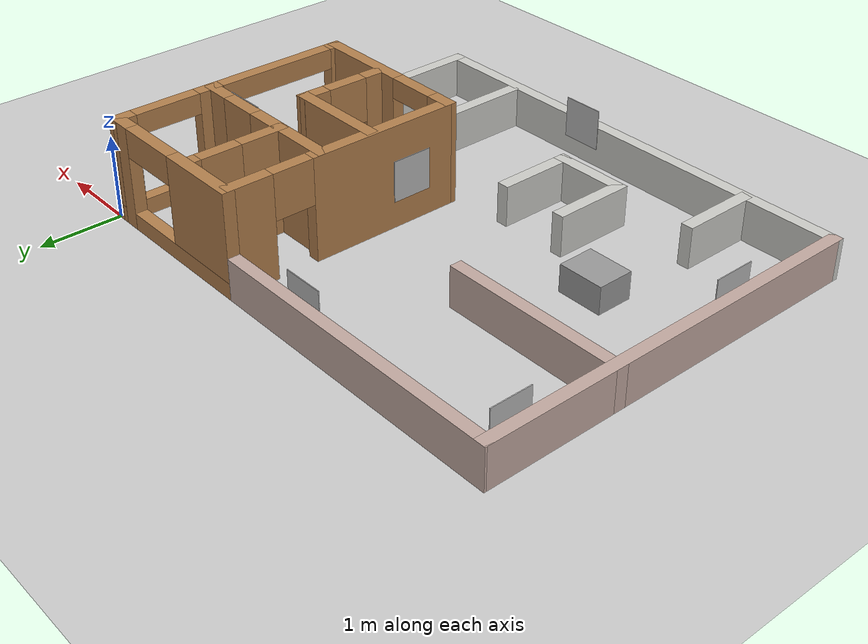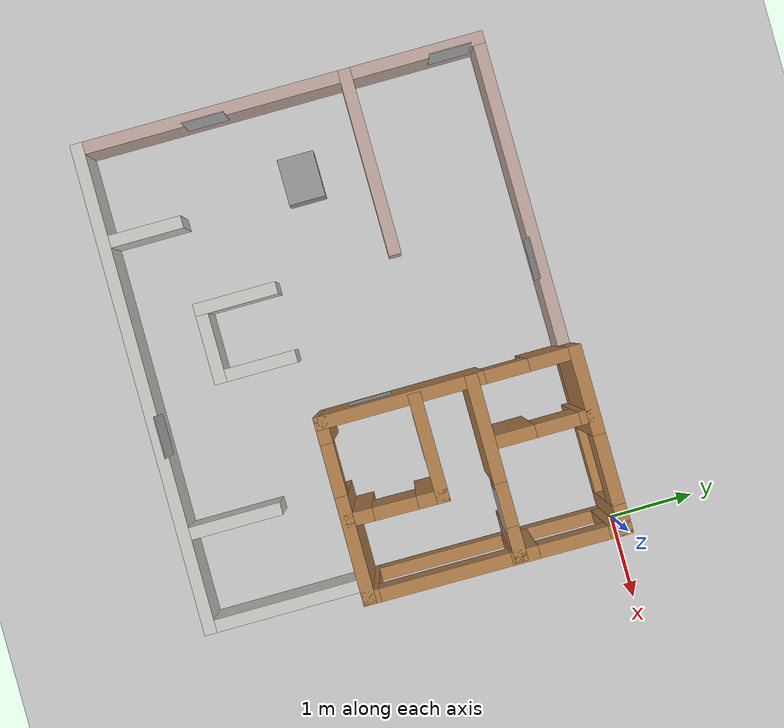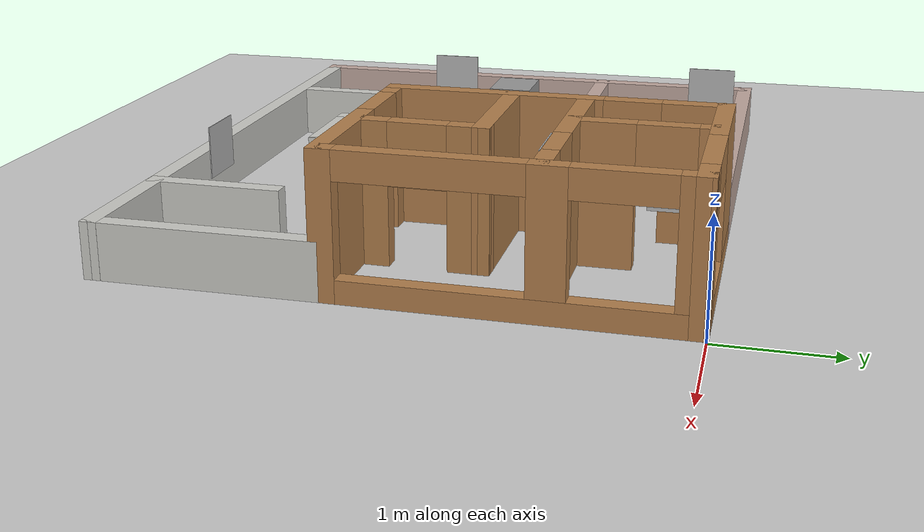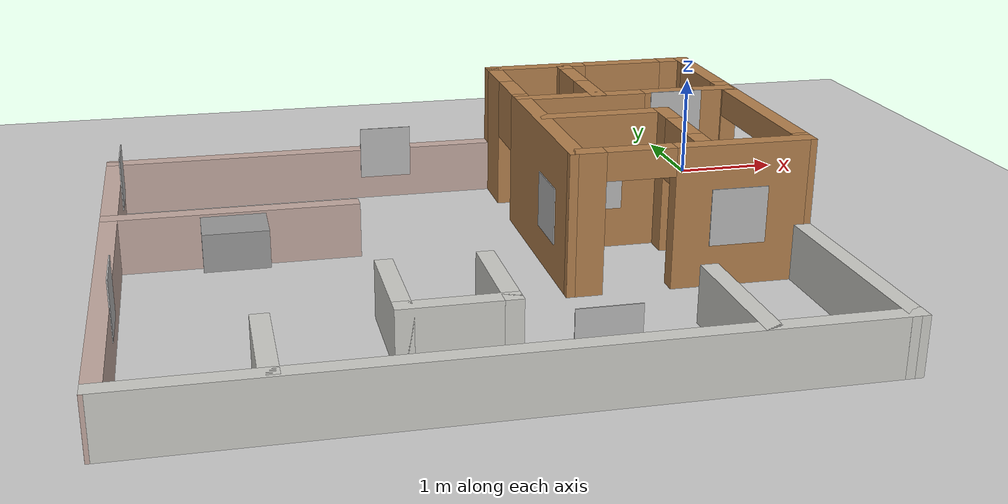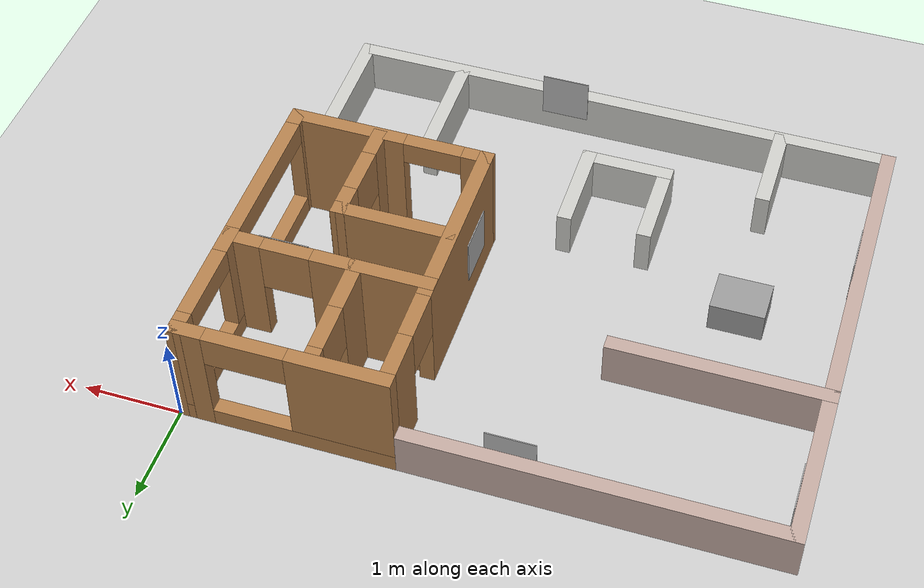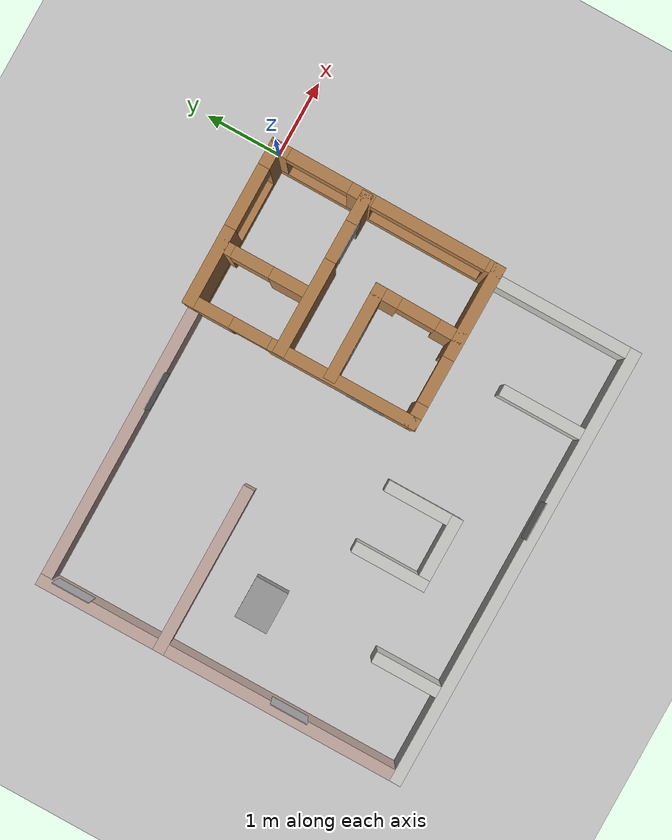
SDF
<sdf version="1.6">
 <world name="default">
  <model name="ground_plane">
   <static>1</static>
   <link name="link">
    <collision name="collision">
     <geometry><plane><normal>0 0 1</normal><size>100 100</size></plane></geometry>
     <surface><friction><ode><mu>100</mu><mu2>50</mu2></ode></friction></surface>
    </collision>
    <visual name="visual">
     <cast_shadows>0</cast_shadows>
     <geometry><plane><normal>0 0 1</normal><size>100 100</size></plane></geometry>
     <material>
      <script><uri>file://media/materials/scripts/gazebo.material</uri><name>Gazebo/Grey</name></script>
     </material>
    </visual>
   </link>
  </model>
  <model name="Muzeum">
   <pose>-3 -2.5 0 0 -0 0</pose>
   <link name="Wall_0">
    <collision name="Wall_0_Collision">
     <geometry><box><size>5.9351 0.15 0.5</size></box></geometry>
     <pose>0 0 0.25 0 -0 0</pose>
    </collision>
    <visual name="Wall_0_Visual">
     <pose>0 0 0.25 0 -0 0</pose>
     <geometry><box><size>5.9351 0.15 0.5</size></box></geometry>
     <material>
      <script><uri>file://media/materials/scripts/gazebo.material</uri><name>Gazebo/CeilingTiled</name></script>
      <ambient>0.760784 0.662745 0.627451 1</ambient>
     </material>
    </visual>
    <pose>-0.007007 -2.42791 0 0 0 -0.003148</pose>
   </link>
   <link name="Wall_10">
    <collision name="Wall_10_Collision">
     <geometry><box><size>2.25 0.15 0.5</size></box></geometry>
     <pose>0 0 0.25 0 -0 0</pose>
    </collision>
    <visual name="Wall_10_Visual">
     <pose>0 0 0.25 0 -0 0</pose>
     <geometry><box><size>2.25 0.15 0.5</size></box></geometry>
     <material>
      <script><uri>file://media/materials/scripts/gazebo.material</uri><name>Gazebo/Grey</name></script>
      <ambient>0.760784 0.662745 0.627451 1</ambient>
     </material>
    </visual>
    <pose>-1.84954 0.824193 0 0 -0 0</pose>
   </link>
   <link name="Wall_12">
    <collision name="Wall_12_Collision">
     <geometry><box><size>1 0.15 0.5</size></box></geometry>
     <pose>0 0 0.25 0 -0 0</pose>
    </collision>
    <visual name="Wall_12_Visual">
     <pose>0 0 0.25 0 -0 0</pose>
     <geometry><box><size>1 0.15 0.5</size></box></geometry>
     <material>
      <script><uri>file://media/materials/scripts/gazebo.material</uri><name>Gazebo/CeilingTiled</name></script>
      <ambient>0.760784 0.662745 0.627451 1</ambient>
     </material>
    </visual>
    <pose>-0.729544 -1.11281 0 0 0 -1.5708</pose>
   </link>
   <link name="Wall_13">
    <collision name="Wall_13_Collision">
     <geometry><box><size>0.979959 0.15 0.5</size></box></geometry>
     <pose>0 0 0.25 0 -0 0</pose>
    </collision>
    <visual name="Wall_13_Visual">
     <pose>0 0 0.25 0 -0 0</pose>
     <geometry><box><size>0.979959 0.15 0.5</size></box></geometry>
     <material>
      <script><uri>file://media/materials/scripts/gazebo.material</uri><name>Gazebo/CeilingTiled</name></script>
      <ambient>0.760784 0.662745 0.627451 1</ambient>
     </material>
    </visual>
    <pose>-0.314544 -1.53781 0 0 -0 0</pose>
   </link>
   <link name="Wall_14">
    <collision name="Wall_14_Collision">
     <geometry><box><size>1.00821 0.15 0.5</size></box></geometry>
     <pose>0 0 0.25 0 -0 0</pose>
    </collision>
    <visual name="Wall_14_Visual">
     <pose>0 0 0.25 0 -0 0</pose>
     <geometry><box><size>1.00821 0.15 0.5</size></box></geometry>
     <material>
      <script><uri>file://media/materials/scripts/gazebo.material</uri><name>Gazebo/CeilingTiled</name></script>
      <ambient>0.760784 0.662745 0.627451 1</ambient>
     </material>
    </visual>
    <pose>0.100456 -1.10881 0 0 -0 1.5708</pose>
   </link>
   <link name="Wall_16">
    <collision name="Wall_16_Collision">
     <geometry><box><size>1.25027 0.15 1.25</size></box></geometry>
     <pose>0 0 0.625 0 -0 0</pose>
    </collision>
    <visual name="Wall_16_Visual">
     <pose>0 0 0.625 0 -0 0</pose>
     <geometry><box><size>1.25027 0.15 1.25</size></box></geometry>
     <material>
      <script><uri>file://media/materials/scripts/gazebo.material</uri><name>Gazebo/Wood</name></script>
      <ambient>1 1 1 1</ambient>
     </material>
    </visual>
    <pose>1.46896 0.594193 0 0 -0 0</pose>
   </link>
   <link name="Wall_17">
    <pose>2.01146 0.070193 0 0 0 -1.58606</pose>
    <visual name="Wall_17_Visual_0">
     <pose>-0.420759 0 0.625 0 -0 0</pose>
     <geometry><box><size>0.357124 0.15 1.25</size></box></geometry>
     <material>
      <script><uri>file://media/materials/scripts/gazebo.material</uri><name>Gazebo/Wood</name></script>
      <ambient>1 1 1 1</ambient>
     </material>
    </visual>
    <collision name="Wall_17_Collision_0">
     <geometry><box><size>0.357124 0.15 1.25</size></box></geometry>
     <pose>-0.420759 0 0.625 0 -0 0</pose>
    </collision>
    <visual name="Wall_17_Visual_1">
     <pose>0.428562 0 0.625 0 -0 0</pose>
     <geometry><box><size>0.341518 0.15 1.25</size></box></geometry>
     <material>
      <script><uri>file://media/materials/scripts/gazebo.material</uri><name>Gazebo/Wood</name></script>
      <ambient>1 1 1 1</ambient>
     </material>
    </visual>
    <collision name="Wall_17_Collision_1">
     <geometry><box><size>0.341518 0.15 1.25</size></box></geometry>
     <pose>0.428562 0 0.625 0 -0 0</pose>
    </collision>
    <visual name="Wall_17_Visual_2">
     <pose>0.007803 0 0.975 0 -0 0</pose>
     <geometry><box><size>0.5 0.15 0.55</size></box></geometry>
     <material>
      <script><uri>file://media/materials/scripts/gazebo.material</uri><name>Gazebo/Wood</name></script>
      <ambient>1 1 1 1</ambient>
     </material>
    </visual>
    <collision name="Wall_17_Collision_2">
     <geometry><box><size>0.5 0.15 0.55</size></box></geometry>
     <pose>0.007803 0 0.975 0 -0 0</pose>
    </collision>
   </link>
   <link name="Wall_19">
    <pose>1.88387 1.24696 0 0 0 -0.003258</pose>
    <visual name="Wall_19_Visual_0">
     <pose>-0.448853 0 0.625 0 -0 0</pose>
     <geometry><box><size>1.23514 0.15 1.25</size></box></geometry>
     <material>
      <script><uri>file://media/materials/scripts/gazebo.material</uri><name>Gazebo/Wood</name></script>
      <ambient>1 1 1 1</ambient>
     </material>
    </visual>
    <collision name="Wall_19_Collision_0">
     <geometry><box><size>1.23514 0.15 1.25</size></box></geometry>
     <pose>-0.448853 0 0.625 0 -0 0</pose>
    </collision>
    <visual name="Wall_19_Visual_1">
     <pose>0.867571 0 0.625 0 -0 0</pose>
     <geometry><box><size>0.397706 0.15 1.25</size></box></geometry>
     <material>
      <script><uri>file://media/materials/scripts/gazebo.material</uri><name>Gazebo/Wood</name></script>
      <ambient>1 1 1 1</ambient>
     </material>
    </visual>
    <collision name="Wall_19_Collision_1">
     <geometry><box><size>0.397706 0.15 1.25</size></box></geometry>
     <pose>0.867571 0 0.625 0 -0 0</pose>
    </collision>
    <visual name="Wall_19_Visual_2">
     <pose>0.418718 0 0.975 0 -0 0</pose>
     <geometry><box><size>0.5 0.15 0.55</size></box></geometry>
     <material>
      <script><uri>file://media/materials/scripts/gazebo.material</uri><name>Gazebo/Wood</name></script>
      <ambient>1 1 1 1</ambient>
     </material>
    </visual>
    <collision name="Wall_19_Collision_2">
     <geometry><box><size>0.5 0.15 0.55</size></box></geometry>
     <pose>0.418718 0 0.975 0 -0 0</pose>
    </collision>
   </link>
   <link name="Wall_21">
    <pose>1.60746 1.80819 0 0 -0 1.5708</pose>
    <visual name="Wall_21_Visual_0">
     <pose>-0.328111 0 0.625 0 -0 0</pose>
     <geometry><box><size>0.593779 0.15 1.25</size></box></geometry>
     <material>
      <script><uri>file://media/materials/scripts/gazebo.material</uri><name>Gazebo/Wood</name></script>
      <ambient>1 1 1 1</ambient>
     </material>
    </visual>
    <collision name="Wall_21_Collision_0">
     <geometry><box><size>0.593779 0.15 1.25</size></box></geometry>
     <pose>-0.328111 0 0.625 0 -0 0</pose>
    </collision>
    <visual name="Wall_21_Visual_1">
     <pose>0.546889 0 0.625 0 -0 0</pose>
     <geometry><box><size>0.156221 0.15 1.25</size></box></geometry>
     <material>
      <script><uri>file://media/materials/scripts/gazebo.material</uri><name>Gazebo/Wood</name></script>
      <ambient>1 1 1 1</ambient>
     </material>
    </visual>
    <collision name="Wall_21_Collision_1">
     <geometry><box><size>0.156221 0.15 1.25</size></box></geometry>
     <pose>0.546889 0 0.625 0 -0 0</pose>
    </collision>
    <visual name="Wall_21_Visual_2">
     <pose>0.218779 0 0.975 0 -0 0</pose>
     <geometry><box><size>0.5 0.15 0.55</size></box></geometry>
     <material>
      <script><uri>file://media/materials/scripts/gazebo.material</uri><name>Gazebo/Wood</name></script>
      <ambient>1 1 1 1</ambient>
     </material>
    </visual>
    <collision name="Wall_21_Collision_2">
     <geometry><box><size>0.5 0.15 0.55</size></box></geometry>
     <pose>0.218779 0 0.975 0 -0 0</pose>
    </collision>
   </link>
   <link name="Wall_23">
    <collision name="Wall_23_Collision">
     <geometry><box><size>1.25 0.15 0.5</size></box></geometry>
     <pose>0 0 0.25 0 -0 0</pose>
    </collision>
    <visual name="Wall_23_Visual">
     <pose>0 0 0.25 0 -0 0</pose>
     <geometry><box><size>1.25 0.15 0.5</size></box></geometry>
     <material>
      <script><uri>file://media/materials/scripts/gazebo.material</uri><name>Gazebo/CeilingTiled</name></script>
      <ambient>0.760784 0.662745 0.627451 1</ambient>
     </material>
    </visual>
    <pose>1.76746 -1.87681 0 0 -0 1.5708</pose>
   </link>
   <link name="Wall_26">
    <collision name="Wall_26_Collision">
     <geometry><box><size>1 0.15 0.5</size></box></geometry>
     <pose>0 0 0.25 0 -0 0</pose>
    </collision>
    <visual name="Wall_26_Visual">
     <pose>0 0 0.25 0 -0 0</pose>
     <geometry><box><size>1 0.15 0.5</size></box></geometry>
     <material>
      <script><uri>file://media/materials/scripts/gazebo.material</uri><name>Gazebo/CeilingTiled</name></script>
      <ambient>0.760784 0.662745 0.627451 1</ambient>
     </material>
    </visual>
    <pose>-1.76654 -1.96681 0 0 -0 1.5708</pose>
   </link>
   <link name="Wall_28">
    <pose>2.89167 0.974494 0 0 -0 1.56552</pose>
    <visual name="Wall_28_Visual_0">
     <pose>-1.43397 0 0.625 0 -0 0</pose>
     <geometry><box><size>0.206833 0.15 1.25</size></box></geometry>
     <material>
      <script><uri>file://media/materials/scripts/gazebo.material</uri><name>Gazebo/Wood</name></script>
      <ambient>1 1 1 1</ambient>
     </material>
    </visual>
    <collision name="Wall_28_Collision_0">
     <geometry><box><size>0.206833 0.15 1.25</size></box></geometry>
     <pose>-1.43397 0 0.625 0 -0 0</pose>
    </collision>
    <visual name="Wall_28_Visual_1">
     <pose>0.103416 0 0.1 0 -0 0</pose>
     <geometry><box><size>2.86795 0.15 0.2</size></box></geometry>
     <material>
      <script><uri>file://media/materials/scripts/gazebo.material</uri><name>Gazebo/Wood</name></script>
      <ambient>1 1 1 1</ambient>
     </material>
    </visual>
    <collision name="Wall_28_Collision_1">
     <geometry><box><size>2.86795 0.15 0.2</size></box></geometry>
     <pose>0.103416 0 0.1 0 -0 0</pose>
    </collision>
    <visual name="Wall_28_Visual_2">
     <pose>0.325307 0 0.725 0 -0 0</pose>
     <geometry><box><size>0.311727 0.15 1.05</size></box></geometry>
     <material>
      <script><uri>file://media/materials/scripts/gazebo.material</uri><name>Gazebo/Wood</name></script>
      <ambient>1 1 1 1</ambient>
     </material>
    </visual>
    <collision name="Wall_28_Collision_2">
     <geometry><box><size>0.311727 0.15 1.05</size></box></geometry>
     <pose>0.325307 0 0.725 0 -0 0</pose>
    </collision>
    <visual name="Wall_28_Visual_3">
     <pose>1.40928 0 0.725 0 -0 0</pose>
     <geometry><box><size>0.256218 0.15 1.05</size></box></geometry>
     <material>
      <script><uri>file://media/materials/scripts/gazebo.material</uri><name>Gazebo/Wood</name></script>
      <ambient>1 1 1 1</ambient>
     </material>
    </visual>
    <collision name="Wall_28_Collision_3">
     <geometry><box><size>0.256218 0.15 1.05</size></box></geometry>
     <pose>1.40928 0 0.725 0 -0 0</pose>
    </collision>
    <visual name="Wall_28_Visual_4">
     <pose>-0.580556 0 1.125 0 -0 0</pose>
     <geometry><box><size>1.5 0.15 0.25</size></box></geometry>
     <material>
      <script><uri>file://media/materials/scripts/gazebo.material</uri><name>Gazebo/Wood</name></script>
      <ambient>1 1 1 1</ambient>
     </material>
    </visual>
    <collision name="Wall_28_Collision_4">
     <geometry><box><size>1.5 0.15 0.25</size></box></geometry>
     <pose>-0.580556 0 1.125 0 -0 0</pose>
    </collision>
    <visual name="Wall_28_Visual_5">
     <pose>0.881171 0 1.125 0 -0 0</pose>
     <geometry><box><size>0.8 0.15 0.25</size></box></geometry>
     <material>
      <script><uri>file://media/materials/scripts/gazebo.material</uri><name>Gazebo/Wood</name></script>
      <ambient>1 1 1 1</ambient>
     </material>
    </visual>
    <collision name="Wall_28_Collision_5">
     <geometry><box><size>0.8 0.15 0.25</size></box></geometry>
     <pose>0.881171 0 1.125 0 -0 0</pose>
    </collision>
   </link>
   <link name="Wall_3">
    <collision name="Wall_3_Collision">
     <geometry><box><size>4.99773 0.15 0.5</size></box></geometry>
     <pose>0 0 0.25 0 -0 0</pose>
    </collision>
    <visual name="Wall_3_Visual">
     <pose>0 0 0.25 0 -0 0</pose>
     <geometry><box><size>4.99773 0.15 0.5</size></box></geometry>
     <material>
      <script><uri>file://media/materials/scripts/gazebo.material</uri><name>Gazebo/Grey</name></script>
      <ambient>0.760784 0.662745 0.627451 1</ambient>
     </material>
    </visual>
    <pose>-2.89954 0.005193 0 0 0 -1.5708</pose>
   </link>
   <link name="Wall_33">
    <pose>1.89342 2.43553 0 0 0 -3.14027</pose>
    <visual name="Wall_33_Visual_0">
     <pose>-0.909474 0 0.625 0 -0 0</pose>
     <geometry><box><size>0.343502 0.15 1.25</size></box></geometry>
     <material>
      <script><uri>file://media/materials/scripts/gazebo.material</uri><name>Gazebo/Wood</name></script>
      <ambient>1 1 1 1</ambient>
     </material>
    </visual>
    <collision name="Wall_33_Collision_0">
     <geometry><box><size>0.343502 0.15 1.25</size></box></geometry>
     <pose>-0.909474 0 0.625 0 -0 0</pose>
    </collision>
    <visual name="Wall_33_Visual_1">
     <pose>0.171751 0 0.1 0 -0 0</pose>
     <geometry><box><size>1.81895 0.15 0.2</size></box></geometry>
     <material>
      <script><uri>file://media/materials/scripts/gazebo.material</uri><name>Gazebo/Wood</name></script>
      <ambient>1 1 1 1</ambient>
     </material>
    </visual>
    <collision name="Wall_33_Collision_1">
     <geometry><box><size>1.81895 0.15 0.2</size></box></geometry>
     <pose>0.171751 0 0.1 0 -0 0</pose>
    </collision>
    <visual name="Wall_33_Visual_2">
     <pose>0.571751 0 0.725 0 -0 0</pose>
     <geometry><box><size>1.01895 0.15 1.05</size></box></geometry>
     <material>
      <script><uri>file://media/materials/scripts/gazebo.material</uri><name>Gazebo/Wood</name></script>
      <ambient>1 1 1 1</ambient>
     </material>
    </visual>
    <collision name="Wall_33_Collision_2">
     <geometry><box><size>1.01895 0.15 1.05</size></box></geometry>
     <pose>0.571751 0 0.725 0 -0 0</pose>
    </collision>
    <visual name="Wall_33_Visual_3">
     <pose>-0.337723 0 1.075 0 -0 0</pose>
     <geometry><box><size>0.8 0.15 0.35</size></box></geometry>
     <material>
      <script><uri>file://media/materials/scripts/gazebo.material</uri><name>Gazebo/Wood</name></script>
      <ambient>1 1 1 1</ambient>
     </material>
    </visual>
    <collision name="Wall_33_Collision_3">
     <geometry><box><size>0.8 0.15 0.35</size></box></geometry>
     <pose>-0.337723 0 1.075 0 -0 0</pose>
    </collision>
   </link>
   <link name="Wall_35">
    <collision name="Wall_35_Collision">
     <geometry><box><size>2.09915 0.15 0.5</size></box></geometry>
     <pose>0 0 0.25 0 -0 0</pose>
    </collision>
    <visual name="Wall_35_Visual">
     <pose>0 0 0.25 0 -0 0</pose>
     <geometry><box><size>2.09915 0.15 0.5</size></box></geometry>
     <material>
      <script><uri>file://media/materials/scripts/gazebo.material</uri><name>Gazebo/CeilingTiled</name></script>
      <ambient>0.760784 0.662745 0.627451 1</ambient>
     </material>
    </visual>
    <pose>2.88474 -1.46245 0 0 -0 1.57161</pose>
   </link>
   <link name="Wall_37">
    <collision name="Wall_37_Collision">
     <geometry><box><size>3.93685 0.15 0.5</size></box></geometry>
     <pose>0 0 0.25 0 -0 0</pose>
    </collision>
    <visual name="Wall_37_Visual">
     <pose>0 0 0.25 0 -0 0</pose>
     <geometry><box><size>3.93685 0.15 0.5</size></box></geometry>
     <material>
      <script><uri>file://media/materials/scripts/gazebo.material</uri><name>Gazebo/Grey</name></script>
      <ambient>0.760784 0.662745 0.627451 1</ambient>
     </material>
    </visual>
    <pose>-1.00604 2.43169 0 0 -0 0.00132</pose>
   </link>
   <link name="Wall_7">
    <pose>0.887455 0.947193 0 0 0 -1.5708</pose>
    <visual name="Wall_7_Visual_0">
     <pose>-1.2252 0 0.625 0 -0 0</pose>
     <geometry><box><size>0.549592 0.15 1.25</size></box></geometry>
     <material>
      <script><uri>file://media/materials/scripts/gazebo.material</uri><name>Gazebo/Wood</name></script>
      <ambient>1 1 1 1</ambient>
     </material>
    </visual>
    <collision name="Wall_7_Collision_0">
     <geometry><box><size>0.549592 0.15 1.25</size></box></geometry>
     <pose>-1.2252 0 0.625 0 -0 0</pose>
    </collision>
    <visual name="Wall_7_Visual_1">
     <pose>0.524796 0 0.625 0 -0 0</pose>
     <geometry><box><size>1.95041 0.15 1.25</size></box></geometry>
     <material>
      <script><uri>file://media/materials/scripts/gazebo.material</uri><name>Gazebo/Wood</name></script>
      <ambient>1 1 1 1</ambient>
     </material>
    </visual>
    <collision name="Wall_7_Collision_1">
     <geometry><box><size>1.95041 0.15 1.25</size></box></geometry>
     <pose>0.524796 0 0.625 0 -0 0</pose>
    </collision>
    <visual name="Wall_7_Visual_2">
     <pose>-0.700408 0 0.975 0 -0 0</pose>
     <geometry><box><size>0.5 0.15 0.55</size></box></geometry>
     <material>
      <script><uri>file://media/materials/scripts/gazebo.material</uri><name>Gazebo/Wood</name></script>
      <ambient>1 1 1 1</ambient>
     </material>
    </visual>
    <collision name="Wall_7_Collision_2">
     <geometry><box><size>0.5 0.15 0.55</size></box></geometry>
     <pose>-0.700408 0 0.975 0 -0 0</pose>
    </collision>
   </link>
   <link name="Wall_8">
    <pose>1.8857 -0.482841 0 0 0 -0.005043</pose>
    <visual name="Wall_8_Visual_0">
     <pose>-0.91578 0 0.625 0 -0 0</pose>
     <geometry><box><size>0.314933 0.15 1.25</size></box></geometry>
     <material>
      <script><uri>file://media/materials/scripts/gazebo.material</uri><name>Gazebo/Wood</name></script>
      <ambient>1 1 1 1</ambient>
     </material>
    </visual>
    <collision name="Wall_8_Collision_0">
     <geometry><box><size>0.314933 0.15 1.25</size></box></geometry>
     <pose>-0.91578 0 0.625 0 -0 0</pose>
    </collision>
    <visual name="Wall_8_Visual_1">
     <pose>0.457466 0 0.625 0 -0 0</pose>
     <geometry><box><size>1.23156 0.15 1.25</size></box></geometry>
     <material>
      <script><uri>file://media/materials/scripts/gazebo.material</uri><name>Gazebo/Wood</name></script>
      <ambient>1 1 1 1</ambient>
     </material>
    </visual>
    <collision name="Wall_8_Collision_1">
     <geometry><box><size>1.23156 0.15 1.25</size></box></geometry>
     <pose>0.457466 0 0.625 0 -0 0</pose>
    </collision>
    <visual name="Wall_8_Visual_2">
     <pose>-0.458314 0 1.125 0 -0 0</pose>
     <geometry><box><size>0.6 0.15 0.25</size></box></geometry>
     <material>
      <script><uri>file://media/materials/scripts/gazebo.material</uri><name>Gazebo/Wood</name></script>
      <ambient>1 1 1 1</ambient>
     </material>
    </visual>
    <collision name="Wall_8_Collision_2">
     <geometry><box><size>0.6 0.15 0.25</size></box></geometry>
     <pose>-0.458314 0 1.125 0 -0 0</pose>
    </collision>
   </link>
   <static>1</static>
  </model>
  <model name="unit_box_0_0">
   <pose>-4.85752 -2.48517 0.161264 -1.6e-05 2e-06 1e-06</pose>
   <scale>1 1 1</scale>
   <link name="link">
    <pose>-4.85752 -2.48517 0.161264 -1.6e-05 2e-06 1e-06</pose>
    <velocity>0 0 0 0 -0 0</velocity>
    <acceleration>0 0 -9.8 0 -0 7e-06</acceleration>
    <wrench>0 0 -0.736263 0 -0 0</wrench>
   </link>
  </model>
  <model name="unit_box_0_0">
   <link name="link">
    <inertial>
     <mass>0.0751289</mass>
     <inertia>
      <ixx>0.00180619</ixx>
      <ixy>0</ixy>
      <ixz>0</ixz>
      <iyy>0.00249277</iyy>
      <iyz>0</iyz>
      <izz>0.0029962</izz>
     </inertia>
    </inertial>
    <visual name="visual">
     <geometry><box><size>0.542327 0.429481 0.32254</size></box></geometry>
     <material>
      <script><name>Gazebo/Grey</name><uri>file://media/materials/scripts/gazebo.material</uri></script>
      <ambient>0.3 0.3 0.3 1</ambient>
      <diffuse>0.7 0.7 0.7 1</diffuse>
      <specular>0.01 0.01 0.01 1</specular>
      <emissive>0 0 0 1</emissive>
     </material>
    </visual>
    <collision name="collision">
     <geometry><box><size>0.542327 0.429481 0.32254</size></box></geometry>
     <surface>
      <friction>
       <ode><mu>1</mu><mu2>1</mu2><fdir1>0 0 0</fdir1><slip1>0</slip1><slip2>0</slip2></ode>
       <torsional>
        <coefficient>1</coefficient>
        <patch_radius>0</patch_radius>
        <surface_radius>0</surface_radius>
        <use_patch_radius>1</use_patch_radius>
        <ode><slip>0</slip></ode>
       </torsional>
      </friction>
      <bounce><restitution_coefficient>0</restitution_coefficient><threshold>1e+06</threshold></bounce>
      <contact>
       <collide_without_contact>0</collide_without_contact>
       <collide_without_contact_bitmask>1</collide_without_contact_bitmask>
       <collide_bitmask>1</collide_bitmask>
       <ode>
        <soft_cfm>0</soft_cfm>
        <soft_erp>0.2</soft_erp>
        <kp>1e+13</kp>
        <kd>1</kd>
        <max_vel>0.01</max_vel>
        <min_depth>0</min_depth>
       </ode>
       <bullet>
        <split_impulse>1</split_impulse>
        <split_impulse_penetration_threshold>-0.01</split_impulse_penetration_threshold>
        <soft_cfm>0</soft_cfm>
        <soft_erp>0.2</soft_erp>
        <kp>1e+13</kp>
        <kd>1</kd>
       </bullet>
      </contact>
     </surface>
    </collision>
   </link>
   <static>0</static>
   <pose>-4.85752 -2.48518 0.5 0 -0 0</pose>
  </model>
  <model name="aruco_mark_7">
   <static>1</static>
   <link name="link">
    <visual name="visual">
     <geometry><mesh><uri>model://aruco_mark_7/meshes/aruco_mark_7.dae</uri><scale>1 1 1</scale></mesh></geometry>
    </visual>
   </link>
   <pose>-2.1926 -2.40816 0.32775 0 -0 0</pose>
  </model>
  <model name="aruco_mark_1">
   <static>1</static>
   <link name="link">
    <visual name="visual">
     <geometry><mesh><uri>model://aruco_mark_1/meshes/aruco_mark_1.dae</uri><scale>1 1 1</scale></mesh></geometry>
    </visual>
   </link>
   <pose>-0.698953 -3.06235 0.368041 0 -0 1.5708</pose>
  </model>
  <model name="aruco_mark_2">
   <static>1</static>
   <link name="link">
    <visual name="visual">
     <geometry><mesh><uri>model://aruco_mark_2/meshes/aruco_mark_2.dae</uri><scale>1 1 1</scale></mesh></geometry>
    </visual>
   </link>
   <pose>-1.61932 -1.98233 0.368041 0 0 -1.5708</pose>
  </model>
  <model name="aruco_mark_3">
   <static>1</static>
   <link name="link">
    <visual name="visual">
     <geometry><mesh><uri>model://aruco_mark_3/meshes/aruco_mark_3.dae</uri><scale>1 1 1</scale></mesh></geometry>
    </visual>
   </link>
   <pose>-0.638328 -1.33011 0.755768 0 0 -1.5708</pose>
  </model>
  <model name="aruco_mark_4">
   <static>1</static>
   <link name="link">
    <visual name="visual">
     <geometry><mesh><uri>model://aruco_mark_4/meshes/aruco_mark_4.dae</uri><scale>1 1 1</scale></mesh></geometry>
    </visual>
   </link>
   <pose>-2.03659 -0.441157 0.28954 0 -0 0</pose>
  </model>
  <model name="aruco_mark_6">
   <static>1</static>
   <link name="link">
    <visual name="visual">
     <geometry><mesh><uri>model://aruco_mark_6/meshes/aruco_mark_6.dae</uri><scale>1 1 1</scale></mesh></geometry>
    </visual>
   </link>
   <pose>-5.82007 -0.43574 0.221918 0 -0 0</pose>
  </model>
  <model name="aruco_mark_0">
   <static>1</static>
   <link name="link">
    <visual name="visual">
     <geometry><mesh><uri>model://aruco_mark_0/meshes/aruco_mark_0.dae</uri><scale>1 1 1</scale></mesh></geometry>
    </visual>
   </link>
   <pose>-5.82378 -3.39153 0.221918 0 -0 0</pose>
  </model>
  <model name="aruco_mark_5">
   <static>1</static>
   <link name="link">
    <visual name="visual">
     <geometry><mesh><uri>model://aruco_mark_5/meshes/aruco_mark_5.dae</uri><scale>1 1 1</scale></mesh></geometry>
    </visual>
   </link>
   <pose>-2.41578 -4.85092 0.221918 0 -0 1.5708</pose>
  </model>
  <model name="aruco_mark_8">
   <static>1</static>
   <link name="link">
    <visual name="visual">
     <geometry><mesh><uri>model://aruco_mark_8/meshes/aruco_mark_8.dae</uri><scale>1 1 1</scale></mesh></geometry>
    </visual>
   </link>
   <pose>-3.25 -0.15 0.22 0 0 -1.5708</pose>
  </model>
 </world>
</sdf>
